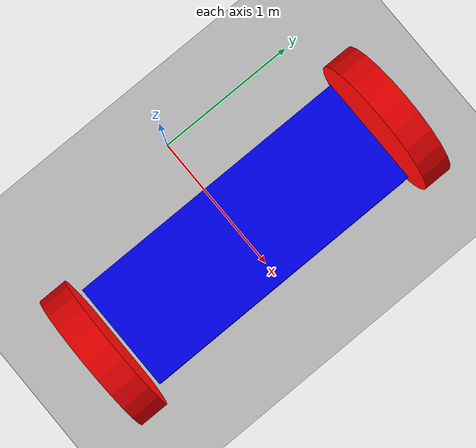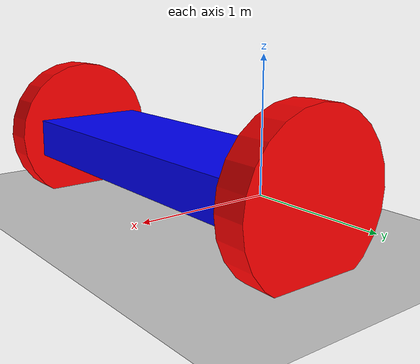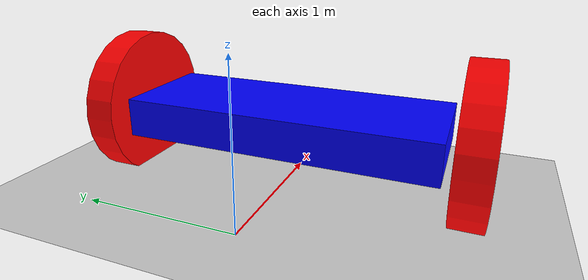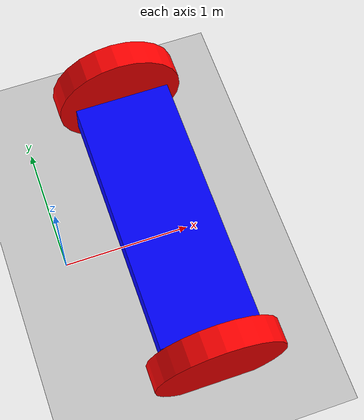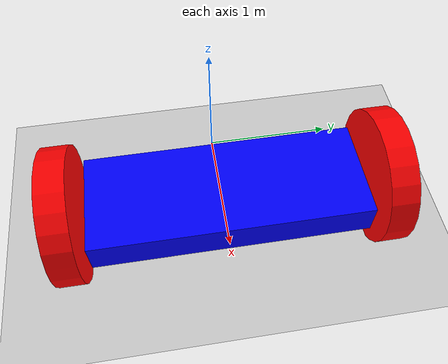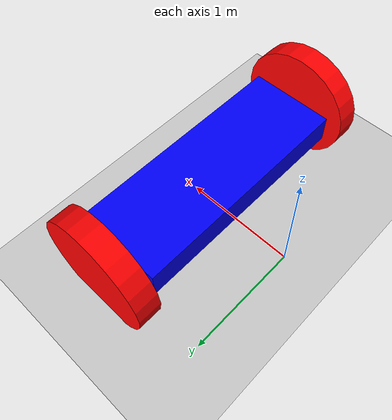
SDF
<?xml version="1.0" ?>
<sdf version="1.8">
    <world name="car_world">
        <physics name="1ms" type="ignored">
            <max_step_size>0.001</max_step_size>
            <real_time_factor>1.0</real_time_factor>
        </physics>
        <plugin
            filename="libignition-gazebo-physics-system.so"
            name="ignition::gazebo::systems::Physics">
        </plugin>
        <plugin
            filename="libignition-gazebo-user-commands-system.so"
            name="ignition::gazebo::systems::UserCommands">
        </plugin>
        <plugin
            filename="libignition-gazebo-scene-broadcaster-system.so"
            name="ignition::gazebo::systems::SceneBroadcaster">
        </plugin>

        <light type="directional" name="sun">
            <cast_shadows>true</cast_shadows>
            <pose>0 0 10 0 0 0</pose>
            <diffuse>0.8 0.8 0.8 1</diffuse>
            <specular>0.2 0.2 0.2 1</specular>
            <attenuation>
                <range>1000</range>
                <constant>0.9</constant>
                <linear>0.01</linear>
                <quadratic>0.001</quadratic>
            </attenuation>
            <direction>-0.5 0.1 -0.9</direction>
        </light>

        <model name="ground_plane">
            <static>true</static>
            <link name="link">
                <collision name="collision">
                <geometry>
                    <plane>
                    <normal>0 0 1</normal>
                    </plane>
                </geometry>
                </collision>
                <visual name="visual">
                <geometry>
                    <plane>
                    <normal>0 0 1</normal>
                    <size>100 100</size>
                    </plane>
                </geometry>
                <material>
                    <ambient>0.8 0.8 0.8 1</ambient>
                    <diffuse>0.8 0.8 0.8 1</diffuse>
                    <specular>0.8 0.8 0.8 1</specular>
                </material>
                </visual>
            </link>
        </model>
        <model name='vehicle_blue' canonical_link='chassis'>
            <pose relative_to='world'>0 0 0 0 0 0</pose>
            <link name='chassis'>
                <pose relative_to='__model__'>0.8 0 0.4 0 0 0</pose>
                <inertial> <!--inertial properties of the link mass, inertia matix-->
                    <mass>1.14395</mass>
                    <inertia>
                        <ixx>0.095329</ixx>
                        <ixy>0</ixy>
                        <ixz>0</ixz>
                        <iyy>0.381317</iyy>
                        <iyz>0</iyz>
                        <izz>0.476646</izz>
                    </inertia>
                </inertial>
                <visual name='visual'>
                <geometry>
                    <box>
                        <size>.75 2.0 0.25</size>
                    </box>
                </geometry>
                <!--let's add color to our link-->
                <material>
                    <ambient>0.0 0.0 1.0 1</ambient>
                    <diffuse>0.0 0.0 1.0 1</diffuse>
                    <specular>0.0 0.0 1.0 1</specular>
                </material>
                </visual>
                <collision name='collision'>
                    <geometry>
                        <box>
                            <size>.75 2.0 0.25</size>
                        </box>
                    </geometry>
                </collision>
            </link>
            <link name='left_wheel'>
                <pose relative_to="chassis">0 1.15 0 -1.5707 0 0</pose>
                <inertial>
                    <mass>1</mass>
                    <inertia>
                        <ixx>0.043333</ixx>
                        <ixy>0</ixy>
                        <ixz>0</ixz>
                        <iyy>0.043333</iyy>
                        <iyz>0</iyz>
                        <izz>0.08</izz>
                    </inertia>
                </inertial>
                <visual name='visual'>
                    <geometry>
                        <cylinder>
                            <radius>0.5</radius>
                            <length>0.2</length>
                        </cylinder>
                    </geometry>
                    <material>
                        <ambient>1.0 0.0 0.0 1</ambient>
                        <diffuse>1.0 0.0 0.0 1</diffuse>
                        <specular>1.0 0.0 0.0 1</specular>
                    </material>
                </visual>
                <collision name='collision'>
                    <geometry>
                        <cylinder>
                            <radius>0.5</radius>
                            <length>0.2</length>
                        </cylinder>
                    </geometry>
                </collision>
            </link>
            <link name='right_wheel'>
                <pose relative_to="chassis">0 -1.15 0 -1.5707 0 0</pose> <!--angles are in radian-->
                <inertial>
                    <mass>1</mass>
                    <inertia>
                        <ixx>0.043333</ixx>
                        <ixy>0</ixy>
                        <ixz>0</ixz>
                        <iyy>0.043333</iyy>
                        <iyz>0</iyz>
                        <izz>0.08</izz>
                    </inertia>
                </inertial>
                <visual name='visual'>
                    <geometry>
                        <cylinder>
                            <radius>0.5</radius>
                            <length>0.2</length>
                        </cylinder>
                    </geometry>
                    <material>
                        <ambient>1.0 0.0 0.0 1</ambient>
                        <diffuse>1.0 0.0 0.0 1</diffuse>
                        <specular>1.0 0.0 0.0 1</specular>
                    </material>
                </visual>
                <collision name='collision'>
                    <geometry>
                        <cylinder>
                            <radius>0.5</radius>
                            <length>0.2</length>
                        </cylinder>
                    </geometry>
                </collision>
            </link>
            <joint name='left_wheel_joint' type='revolute'>
                <pose relative_to='left_wheel'/>
                <parent>chassis</parent>
                <child>left_wheel</child>
                <axis>
                    <xyz expressed_in='__model__'>0 1 0</xyz> <!--can be defined as any frame or even arbitrary frames-->
                    <limit>
                        <lower>-1.79769e+308</lower>    <!--negative infinity-->
                        <upper>1.79769e+308</upper>     <!--positive infinity-->
                    </limit>
                </axis>
            </joint>
            <joint name='right_wheel_joint' type='revolute'>
                <pose relative_to='right_wheel'/>
                <parent>chassis</parent>
                <child>right_wheel</child>
                <axis>
                    <xyz expressed_in='__model__'>0 1 0</xyz>
                    <limit>
                        <lower>-1.79769e+308</lower>    <!--negative infinity-->
                        <upper>1.79769e+308</upper>     <!--positive infinity-->
                    </limit>
                </axis>
            </joint>
        </model>
    </world>
</sdf>
